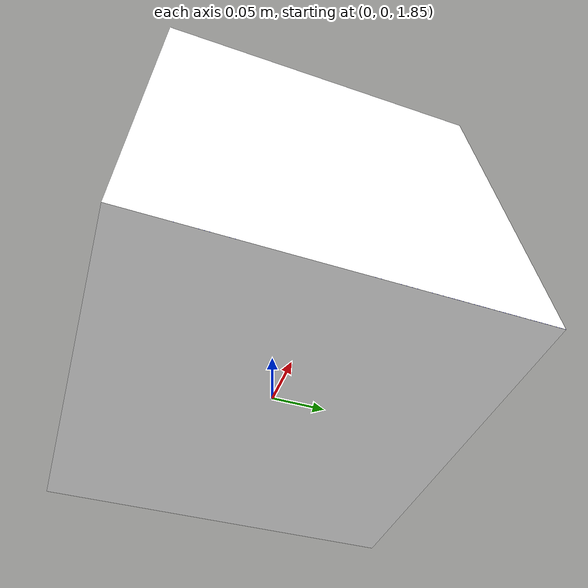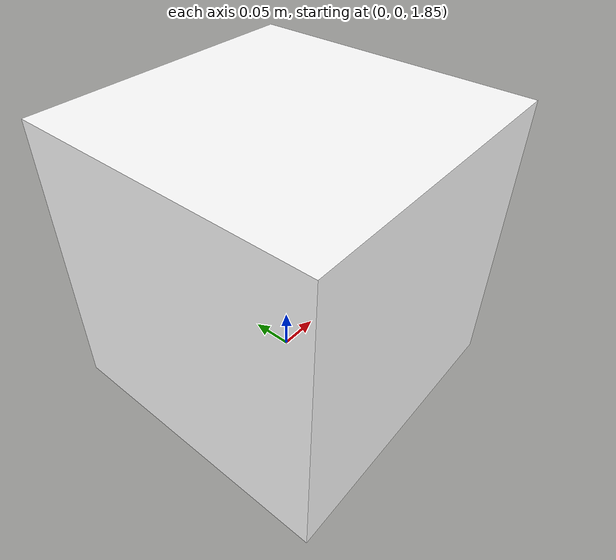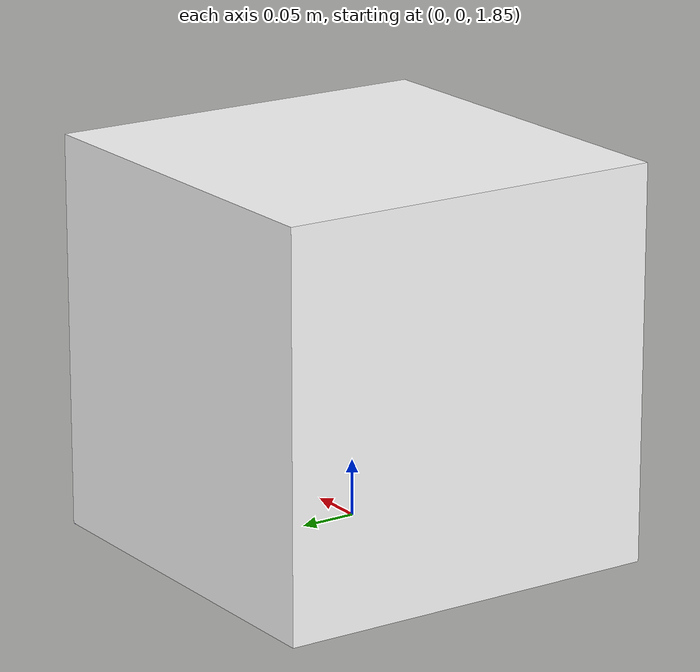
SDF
<?xml version="1.0" ?>
<sdf version="1.9">
  <model name="custom_cube">
    <static>false</static>
    <pose>0 0 0 0 0 0</pose>

    <link name="link">
      <pose>0 0 2 0 0 0</pose>

      <inertial>
        <mass>0.63</mass>
        <inertia>
          <ixx>0.0128625</ixx>
          <ixy>0.0</ixy>
          <ixz>0.0</ixz>
          <iyy>0.0128625</iyy>
          <iyz>0.0</iyz>
          <izz>0.0128625</izz>
        </inertia>
      </inertial>

      <collision name="collision">
        <geometry>
          <box>
            <size>0.35 0.35 0.35</size>
          </box>
        </geometry>
      </collision>

      <visual name="visual_main">
        <geometry>
          <box>
            <size>0.35 0.35 0.35</size>
          </box>
        </geometry>
        <material>
          <ambient>1 1 1 1</ambient>
          <diffuse>1 1 1 1</diffuse>
          <specular>0.1 0.1 0.1 1</specular>
          <pbr>
            <metal>
              <albedo_map>real_page_22_0_0_255_texture.png</albedo_map>
              <roughness>0.6</roughness>
              <metalness>0.0</metalness>
            </metal>
          </pbr>
        </material>
      </visual>

      <visual name="visual_bottom">
        <pose>0 0 -0.17495 0 0 0</pose>
        <geometry>
          <box>
            <size>0.35 0.35 0.0001</size>
          </box>
        </geometry>
        <material>
          <ambient>0.0 0.0 1.0 1</ambient>
          <diffuse>0.0 0.0 1.0 1</diffuse>
          <specular>0.1 0.1 0.1 1</specular>
        </material>
      </visual>

    </link>
  </model>
</sdf>
